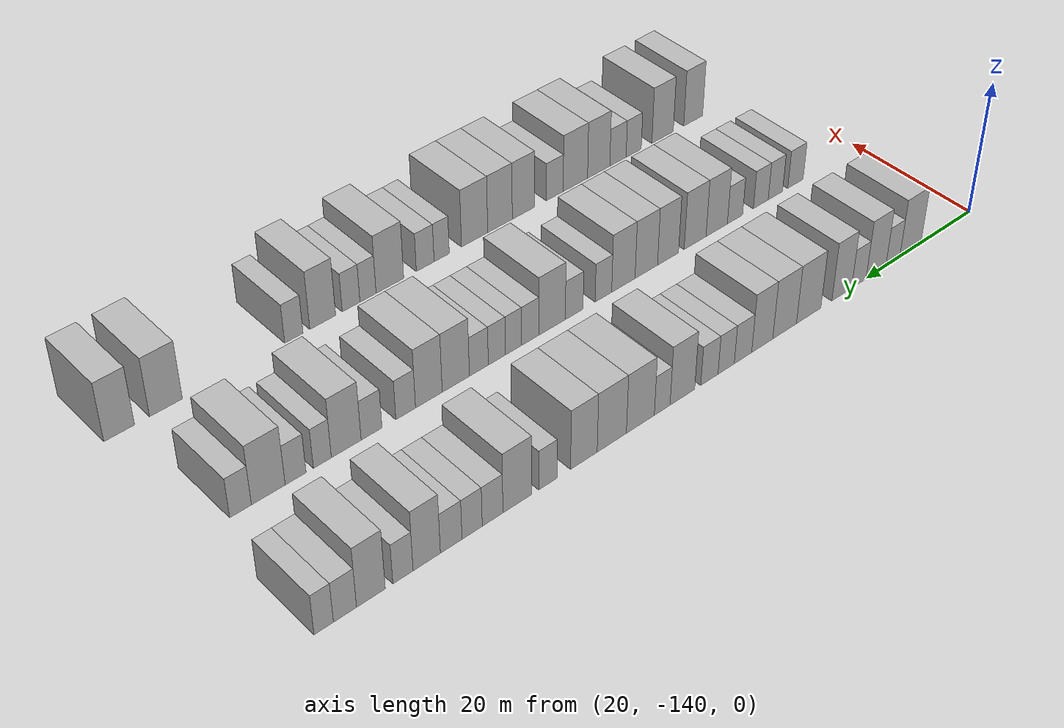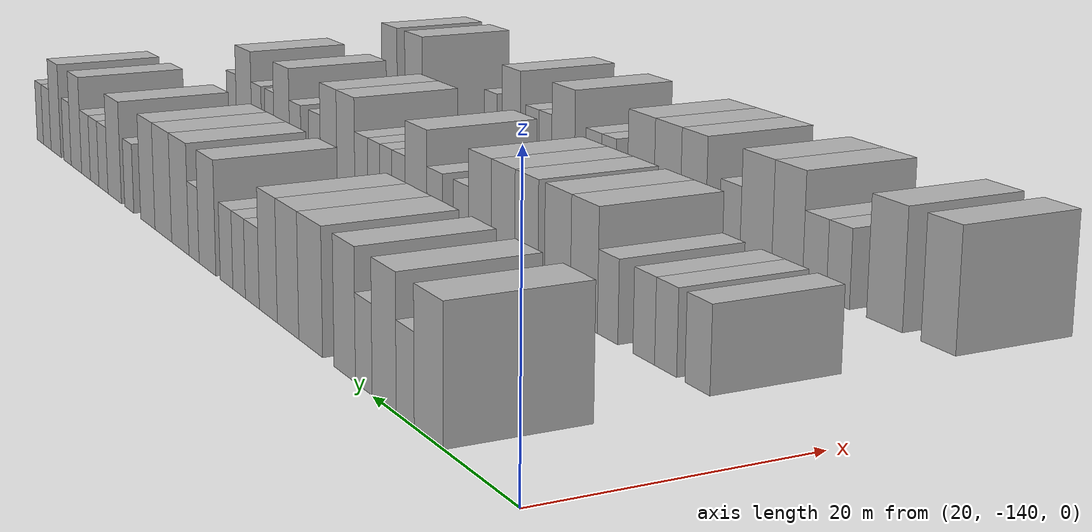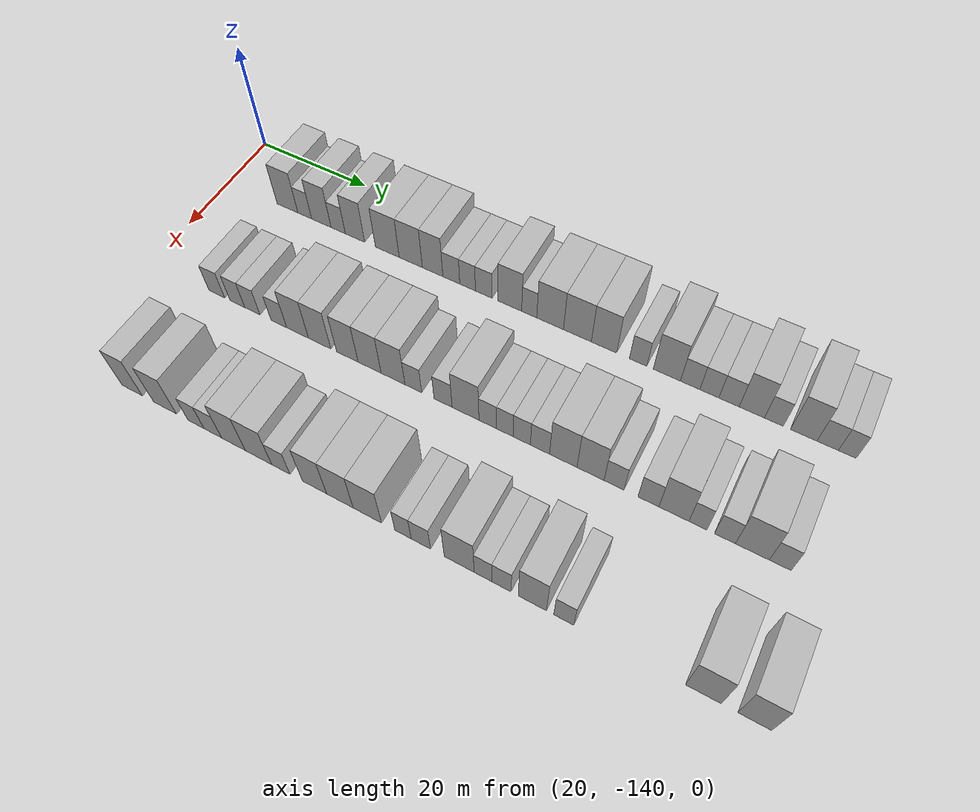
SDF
<sdf version="1.6">
 <world name="default">
  <model name="building_21">
   <static>1</static>
   <pose>25.0000 -128.2449 0 0.000000 0.000000 0.000000</pose>
   <link name="link">
    <pose>0 0 4.50 0 0 0</pose>
    <collision name="collision"><geometry><box><size>10.0000 4.0535 9.0000</size></box></geometry></collision>
    <visual name="visual">
     <cast_shadows>0</cast_shadows>
     <geometry><box><size>10.0000 4.0535 9.0000</size></box></geometry>
     <material>
      <script>
       <uri>model://HANNAS_wall/materials/scripts</uri>
       <uri>model://HANNAS_wall/materials/textures</uri>
       <name>vrc/HANNAS_wall</name>
      </script>
     </material>
    </visual>
   </link>
  </model>
  <model name="building_22">
   <static>1</static>
   <pose>25.0000 -124.8928 0 0.000000 0.000000 0.000000</pose>
   <link name="link">
    <pose>0 0 3.00 0 0 0</pose>
    <collision name="collision"><geometry><box><size>10.0000 2.6507 6.0000</size></box></geometry></collision>
    <visual name="visual">
     <cast_shadows>0</cast_shadows>
     <geometry><box><size>10.0000 2.6507 6.0000</size></box></geometry>
     <material>
      <script>
       <uri>model://HANNAS_wall/materials/scripts</uri>
       <uri>model://HANNAS_wall/materials/textures</uri>
       <name>vrc/HANNAS_wall</name>
      </script>
     </material>
    </visual>
   </link>
  </model>
  <model name="building_23">
   <static>1</static>
   <pose>25.0000 -121.7059 0 0.000000 0.000000 0.000000</pose>
   <link name="link">
    <pose>0 0 4.50 0 0 0</pose>
    <collision name="collision"><geometry><box><size>10.0000 3.7232 9.0000</size></box></geometry></collision>
    <visual name="visual">
     <cast_shadows>0</cast_shadows>
     <geometry><box><size>10.0000 3.7232 9.0000</size></box></geometry>
     <material>
      <script>
       <uri>model://HANNAS_wall/materials/scripts</uri>
       <uri>model://HANNAS_wall/materials/textures</uri>
       <name>vrc/HANNAS_wall</name>
      </script>
     </material>
    </visual>
   </link>
  </model>
  <model name="building_24">
   <static>1</static>
   <pose>25.0000 -118.4981 0 0.000000 0.000000 0.000000</pose>
   <link name="link">
    <pose>0 0 3.00 0 0 0</pose>
    <collision name="collision"><geometry><box><size>10.0000 2.6922 6.0000</size></box></geometry></collision>
    <visual name="visual">
     <cast_shadows>0</cast_shadows>
     <geometry><box><size>10.0000 2.6922 6.0000</size></box></geometry>
     <material>
      <script>
       <uri>model://HANNAS_wall/materials/scripts</uri>
       <uri>model://HANNAS_wall/materials/textures</uri>
       <name>vrc/HANNAS_wall</name>
      </script>
     </material>
    </visual>
   </link>
  </model>
  <model name="building_25">
   <static>1</static>
   <pose>25.0000 -115.3469 0 0.000000 0.000000 0.000000</pose>
   <link name="link">
    <pose>0 0 4.50 0 0 0</pose>
    <collision name="collision"><geometry><box><size>10.0000 3.6103 9.0000</size></box></geometry></collision>
    <visual name="visual">
     <cast_shadows>0</cast_shadows>
     <geometry><box><size>10.0000 3.6103 9.0000</size></box></geometry>
     <material>
      <script>
       <uri>model://HANNAS_wall/materials/scripts</uri>
       <uri>model://HANNAS_wall/materials/textures</uri>
       <name>vrc/HANNAS_wall</name>
      </script>
     </material>
    </visual>
   </link>
  </model>
  <model name="building_26">
   <static>1</static>
   <pose>25.0000 -109.3622 0 0.000000 0.000000 0.000000</pose>
   <link name="link">
    <pose>0 0 4.50 0 0 0</pose>
    <collision name="collision"><geometry><box><size>10.0000 4.3591 9.0000</size></box></geometry></collision>
    <visual name="visual">
     <cast_shadows>0</cast_shadows>
     <geometry><box><size>10.0000 4.3591 9.0000</size></box></geometry>
     <material>
      <script>
       <uri>model://HANNAS_wall/materials/scripts</uri>
       <uri>model://HANNAS_wall/materials/textures</uri>
       <name>vrc/HANNAS_wall</name>
      </script>
     </material>
    </visual>
   </link>
  </model>
  <model name="building_27">
   <static>1</static>
   <pose>25.0000 -105.1069 0 0.000000 0.000000 0.000000</pose>
   <link name="link">
    <pose>0 0 4.50 0 0 0</pose>
    <collision name="collision"><geometry><box><size>10.0000 4.1515 9.0000</size></box></geometry></collision>
    <visual name="visual">
     <cast_shadows>0</cast_shadows>
     <geometry><box><size>10.0000 4.1515 9.0000</size></box></geometry>
     <material>
      <script>
       <uri>model://HANNAS_wall/materials/scripts</uri>
       <uri>model://HANNAS_wall/materials/textures</uri>
       <name>vrc/HANNAS_wall</name>
      </script>
     </material>
    </visual>
   </link>
  </model>
  <model name="building_28">
   <static>1</static>
   <pose>25.0000 -101.2152 0 0.000000 0.000000 0.000000</pose>
   <link name="link">
    <pose>0 0 4.50 0 0 0</pose>
    <collision name="collision"><geometry><box><size>10.0000 3.6319 9.0000</size></box></geometry></collision>
    <visual name="visual">
     <cast_shadows>0</cast_shadows>
     <geometry><box><size>10.0000 3.6319 9.0000</size></box></geometry>
     <material>
      <script>
       <uri>model://HANNAS_wall/materials/scripts</uri>
       <uri>model://HANNAS_wall/materials/textures</uri>
       <name>vrc/HANNAS_wall</name>
      </script>
     </material>
    </visual>
   </link>
  </model>
  <model name="building_29">
   <static>1</static>
   <pose>25.0000 -97.9208 0 0.000000 0.000000 0.000000</pose>
   <link name="link">
    <pose>0 0 3.00 0 0 0</pose>
    <collision name="collision"><geometry><box><size>10.0000 2.9568 6.0000</size></box></geometry></collision>
    <visual name="visual">
     <cast_shadows>0</cast_shadows>
     <geometry><box><size>10.0000 2.9568 6.0000</size></box></geometry>
     <material>
      <script>
       <uri>model://HANNAS_wall/materials/scripts</uri>
       <uri>model://HANNAS_wall/materials/textures</uri>
       <name>vrc/HANNAS_wall</name>
      </script>
     </material>
    </visual>
   </link>
  </model>
  <model name="building_30">
   <static>1</static>
   <pose>25.0000 -95.0823 0 0.000000 0.000000 0.000000</pose>
   <link name="link">
    <pose>0 0 3.00 0 0 0</pose>
    <collision name="collision"><geometry><box><size>10.0000 2.7202 6.0000</size></box></geometry></collision>
    <visual name="visual">
     <cast_shadows>0</cast_shadows>
     <geometry><box><size>10.0000 2.7202 6.0000</size></box></geometry>
     <material>
      <script>
       <uri>model://HANNAS_wall/materials/scripts</uri>
       <uri>model://HANNAS_wall/materials/textures</uri>
       <name>vrc/HANNAS_wall</name>
      </script>
     </material>
    </visual>
   </link>
  </model>
  <model name="building_31">
   <static>1</static>
   <pose>25.0000 -92.2942 0 0.000000 0.000000 0.000000</pose>
   <link name="link">
    <pose>0 0 3.00 0 0 0</pose>
    <collision name="collision"><geometry><box><size>10.0000 2.8559 6.0000</size></box></geometry></collision>
    <visual name="visual">
     <cast_shadows>0</cast_shadows>
     <geometry><box><size>10.0000 2.8559 6.0000</size></box></geometry>
     <material>
      <script>
       <uri>model://HANNAS_wall/materials/scripts</uri>
       <uri>model://HANNAS_wall/materials/textures</uri>
       <name>vrc/HANNAS_wall</name>
      </script>
     </material>
    </visual>
   </link>
  </model>
  <model name="building_32">
   <static>1</static>
   <pose>25.0000 -87.8706 0 0.000000 0.000000 0.000000</pose>
   <link name="link">
    <pose>0 0 4.50 0 0 0</pose>
    <collision name="collision"><geometry><box><size>10.0000 3.9913 9.0000</size></box></geometry></collision>
    <visual name="visual">
     <cast_shadows>0</cast_shadows>
     <geometry><box><size>10.0000 3.9913 9.0000</size></box></geometry>
     <material>
      <script>
       <uri>model://HANNAS_wall/materials/scripts</uri>
       <uri>model://HANNAS_wall/materials/textures</uri>
       <name>vrc/HANNAS_wall</name>
      </script>
     </material>
    </visual>
   </link>
  </model>
  <model name="building_33">
   <static>1</static>
   <pose>25.0000 -84.6173 0 0.000000 0.000000 0.000000</pose>
   <link name="link">
    <pose>0 0 3.00 0 0 0</pose>
    <collision name="collision"><geometry><box><size>10.0000 2.5153 6.0000</size></box></geometry></collision>
    <visual name="visual">
     <cast_shadows>0</cast_shadows>
     <geometry><box><size>10.0000 2.5153 6.0000</size></box></geometry>
     <material>
      <script>
       <uri>model://HANNAS_wall/materials/scripts</uri>
       <uri>model://HANNAS_wall/materials/textures</uri>
       <name>vrc/HANNAS_wall</name>
      </script>
     </material>
    </visual>
   </link>
  </model>
  <model name="building_34">
   <static>1</static>
   <pose>25.0000 -81.1599 0 0.000000 0.000000 0.000000</pose>
   <link name="link">
    <pose>0 0 4.50 0 0 0</pose>
    <collision name="collision"><geometry><box><size>10.0000 4.3994 9.0000</size></box></geometry></collision>
    <visual name="visual">
     <cast_shadows>0</cast_shadows>
     <geometry><box><size>10.0000 4.3994 9.0000</size></box></geometry>
     <material>
      <script>
       <uri>model://HANNAS_wall/materials/scripts</uri>
       <uri>model://HANNAS_wall/materials/textures</uri>
       <name>vrc/HANNAS_wall</name>
      </script>
     </material>
    </visual>
   </link>
  </model>
  <model name="building_35">
   <static>1</static>
   <pose>25.0000 -76.7118 0 0.000000 0.000000 0.000000</pose>
   <link name="link">
    <pose>0 0 4.50 0 0 0</pose>
    <collision name="collision"><geometry><box><size>10.0000 4.4968 9.0000</size></box></geometry></collision>
    <visual name="visual">
     <cast_shadows>0</cast_shadows>
     <geometry><box><size>10.0000 4.4968 9.0000</size></box></geometry>
     <material>
      <script>
       <uri>model://HANNAS_wall/materials/scripts</uri>
       <uri>model://HANNAS_wall/materials/textures</uri>
       <name>vrc/HANNAS_wall</name>
      </script>
     </material>
    </visual>
   </link>
  </model>
  <model name="building_36">
   <static>1</static>
   <pose>25.0000 -72.4537 0 0.000000 0.000000 0.000000</pose>
   <link name="link">
    <pose>0 0 4.50 0 0 0</pose>
    <collision name="collision"><geometry><box><size>10.0000 4.0195 9.0000</size></box></geometry></collision>
    <visual name="visual">
     <cast_shadows>0</cast_shadows>
     <geometry><box><size>10.0000 4.0195 9.0000</size></box></geometry>
     <material>
      <script>
       <uri>model://HANNAS_wall/materials/scripts</uri>
       <uri>model://HANNAS_wall/materials/textures</uri>
       <name>vrc/HANNAS_wall</name>
      </script>
     </material>
    </visual>
   </link>
  </model>
  <model name="building_37">
   <static>1</static>
   <pose>25.0000 -67.0926 0 0.000000 0.000000 0.000000</pose>
   <link name="link">
    <pose>0 0 3.00 0 0 0</pose>
    <collision name="collision"><geometry><box><size>10.0000 2.7026 6.0000</size></box></geometry></collision>
    <visual name="visual">
     <cast_shadows>0</cast_shadows>
     <geometry><box><size>10.0000 2.7026 6.0000</size></box></geometry>
     <material>
      <script>
       <uri>model://HANNAS_wall/materials/scripts</uri>
       <uri>model://HANNAS_wall/materials/textures</uri>
       <name>vrc/HANNAS_wall</name>
      </script>
     </material>
    </visual>
   </link>
  </model>
  <model name="building_38">
   <static>1</static>
   <pose>25.0000 -62.6629 0 0.000000 0.000000 0.000000</pose>
   <link name="link">
    <pose>0 0 4.50 0 0 0</pose>
    <collision name="collision"><geometry><box><size>10.0000 4.1569 9.0000</size></box></geometry></collision>
    <visual name="visual">
     <cast_shadows>0</cast_shadows>
     <geometry><box><size>10.0000 4.1569 9.0000</size></box></geometry>
     <material>
      <script>
       <uri>model://HANNAS_wall/materials/scripts</uri>
       <uri>model://HANNAS_wall/materials/textures</uri>
       <name>vrc/HANNAS_wall</name>
      </script>
     </material>
    </visual>
   </link>
  </model>
  <model name="building_39">
   <static>1</static>
   <pose>25.0000 -59.1202 0 0.000000 0.000000 0.000000</pose>
   <link name="link">
    <pose>0 0 3.00 0 0 0</pose>
    <collision name="collision"><geometry><box><size>10.0000 2.9286 6.0000</size></box></geometry></collision>
    <visual name="visual">
     <cast_shadows>0</cast_shadows>
     <geometry><box><size>10.0000 2.9286 6.0000</size></box></geometry>
     <material>
      <script>
       <uri>model://HANNAS_wall/materials/scripts</uri>
       <uri>model://HANNAS_wall/materials/textures</uri>
       <name>vrc/HANNAS_wall</name>
      </script>
     </material>
    </visual>
   </link>
  </model>
  <model name="building_40">
   <static>1</static>
   <pose>25.0000 -56.2437 0 0.000000 0.000000 0.000000</pose>
   <link name="link">
    <pose>0 0 3.00 0 0 0</pose>
    <collision name="collision"><geometry><box><size>10.0000 2.8243 6.0000</size></box></geometry></collision>
    <visual name="visual">
     <cast_shadows>0</cast_shadows>
     <geometry><box><size>10.0000 2.8243 6.0000</size></box></geometry>
     <material>
      <script>
       <uri>model://HANNAS_wall/materials/scripts</uri>
       <uri>model://HANNAS_wall/materials/textures</uri>
       <name>vrc/HANNAS_wall</name>
      </script>
     </material>
    </visual>
   </link>
  </model>
  <model name="building_41">
   <static>1</static>
   <pose>25.0000 -53.3429 0 0.000000 0.000000 0.000000</pose>
   <link name="link">
    <pose>0 0 3.00 0 0 0</pose>
    <collision name="collision"><geometry><box><size>10.0000 2.9773 6.0000</size></box></geometry></collision>
    <visual name="visual">
     <cast_shadows>0</cast_shadows>
     <geometry><box><size>10.0000 2.9773 6.0000</size></box></geometry>
     <material>
      <script>
       <uri>model://HANNAS_wall/materials/scripts</uri>
       <uri>model://HANNAS_wall/materials/textures</uri>
       <name>vrc/HANNAS_wall</name>
      </script>
     </material>
    </visual>
   </link>
  </model>
  <model name="building_42">
   <static>1</static>
   <pose>25.0000 -50.0095 0 0.000000 0.000000 0.000000</pose>
   <link name="link">
    <pose>0 0 4.50 0 0 0</pose>
    <collision name="collision"><geometry><box><size>10.0000 3.6895 9.0000</size></box></geometry></collision>
    <visual name="visual">
     <cast_shadows>0</cast_shadows>
     <geometry><box><size>10.0000 3.6895 9.0000</size></box></geometry>
     <material>
      <script>
       <uri>model://HANNAS_wall/materials/scripts</uri>
       <uri>model://HANNAS_wall/materials/textures</uri>
       <name>vrc/HANNAS_wall</name>
      </script>
     </material>
    </visual>
   </link>
  </model>
  <model name="building_43">
   <static>1</static>
   <pose>25.0000 -46.8148 0 0.000000 0.000000 0.000000</pose>
   <link name="link">
    <pose>0 0 3.00 0 0 0</pose>
    <collision name="collision"><geometry><box><size>10.0000 2.6999 6.0000</size></box></geometry></collision>
    <visual name="visual">
     <cast_shadows>0</cast_shadows>
     <geometry><box><size>10.0000 2.6999 6.0000</size></box></geometry>
     <material>
      <script>
       <uri>model://HANNAS_wall/materials/scripts</uri>
       <uri>model://HANNAS_wall/materials/textures</uri>
       <name>vrc/HANNAS_wall</name>
      </script>
     </material>
    </visual>
   </link>
  </model>
  <model name="building_44">
   <static>1</static>
   <pose>25.0000 -42.5938 0 0.000000 0.000000 0.000000</pose>
   <link name="link">
    <pose>0 0 4.50 0 0 0</pose>
    <collision name="collision"><geometry><box><size>10.0000 3.7421 9.0000</size></box></geometry></collision>
    <visual name="visual">
     <cast_shadows>0</cast_shadows>
     <geometry><box><size>10.0000 3.7421 9.0000</size></box></geometry>
     <material>
      <script>
       <uri>model://HANNAS_wall/materials/scripts</uri>
       <uri>model://HANNAS_wall/materials/textures</uri>
       <name>vrc/HANNAS_wall</name>
      </script>
     </material>
    </visual>
   </link>
  </model>
  <model name="building_45">
   <static>1</static>
   <pose>25.0000 -39.2395 0 0.000000 0.000000 0.000000</pose>
   <link name="link">
    <pose>0 0 3.00 0 0 0</pose>
    <collision name="collision"><geometry><box><size>10.0000 2.9665 6.0000</size></box></geometry></collision>
    <visual name="visual">
     <cast_shadows>0</cast_shadows>
     <geometry><box><size>10.0000 2.9665 6.0000</size></box></geometry>
     <material>
      <script>
       <uri>model://HANNAS_wall/materials/scripts</uri>
       <uri>model://HANNAS_wall/materials/textures</uri>
       <name>vrc/HANNAS_wall</name>
      </script>
     </material>
    </visual>
   </link>
  </model>
  <model name="building_46">
   <static>1</static>
   <pose>25.0000 -36.5305 0 0.000000 0.000000 0.000000</pose>
   <link name="link">
    <pose>0 0 3.00 0 0 0</pose>
    <collision name="collision"><geometry><box><size>10.0000 2.4515 6.0000</size></box></geometry></collision>
    <visual name="visual">
     <cast_shadows>0</cast_shadows>
     <geometry><box><size>10.0000 2.4515 6.0000</size></box></geometry>
     <material>
      <script>
       <uri>model://HANNAS_wall/materials/scripts</uri>
       <uri>model://HANNAS_wall/materials/textures</uri>
       <name>vrc/HANNAS_wall</name>
      </script>
     </material>
    </visual>
   </link>
  </model>
  <model name="building_148">
   <static>1</static>
   <pose>44.0000 -127.6024 0 0.000000 0.000000 0.000000</pose>
   <link name="link">
    <pose>0 0 3.00 0 0 0</pose>
    <collision name="collision"><geometry><box><size>10.0000 2.9538 6.0000</size></box></geometry></collision>
    <visual name="visual">
     <cast_shadows>0</cast_shadows>
     <geometry><box><size>10.0000 2.9538 6.0000</size></box></geometry>
     <material>
      <script>
       <uri>model://HANNAS_wall/materials/scripts</uri>
       <uri>model://HANNAS_wall/materials/textures</uri>
       <name>vrc/HANNAS_wall</name>
      </script>
     </material>
    </visual>
   </link>
  </model>
  <model name="building_149">
   <static>1</static>
   <pose>44.0000 -123.7589 0 0.000000 0.000000 0.000000</pose>
   <link name="link">
    <pose>0 0 3.00 0 0 0</pose>
    <collision name="collision"><geometry><box><size>10.0000 2.7332 6.0000</size></box></geometry></collision>
    <visual name="visual">
     <cast_shadows>0</cast_shadows>
     <geometry><box><size>10.0000 2.7332 6.0000</size></box></geometry>
     <material>
      <script>
       <uri>model://HANNAS_wall/materials/scripts</uri>
       <uri>model://HANNAS_wall/materials/textures</uri>
       <name>vrc/HANNAS_wall</name>
      </script>
     </material>
    </visual>
   </link>
  </model>
  <model name="building_150">
   <static>1</static>
   <pose>44.0000 -120.9996 0 0.000000 0.000000 0.000000</pose>
   <link name="link">
    <pose>0 0 3.00 0 0 0</pose>
    <collision name="collision"><geometry><box><size>10.0000 2.7855 6.0000</size></box></geometry></collision>
    <visual name="visual">
     <cast_shadows>0</cast_shadows>
     <geometry><box><size>10.0000 2.7855 6.0000</size></box></geometry>
     <material>
      <script>
       <uri>model://HANNAS_wall/materials/scripts</uri>
       <uri>model://HANNAS_wall/materials/textures</uri>
       <name>vrc/HANNAS_wall</name>
      </script>
     </material>
    </visual>
   </link>
  </model>
  <model name="building_151">
   <static>1</static>
   <pose>44.0000 -116.2010 0 0.000000 0.000000 0.000000</pose>
   <link name="link">
    <pose>0 0 3.00 0 0 0</pose>
    <collision name="collision"><geometry><box><size>10.0000 2.8116 6.0000</size></box></geometry></collision>
    <visual name="visual">
     <cast_shadows>0</cast_shadows>
     <geometry><box><size>10.0000 2.8116 6.0000</size></box></geometry>
     <material>
      <script>
       <uri>model://HANNAS_wall/materials/scripts</uri>
       <uri>model://HANNAS_wall/materials/textures</uri>
       <name>vrc/HANNAS_wall</name>
      </script>
     </material>
    </visual>
   </link>
  </model>
  <model name="building_152">
   <static>1</static>
   <pose>44.0000 -112.8559 0 0.000000 0.000000 0.000000</pose>
   <link name="link">
    <pose>0 0 4.50 0 0 0</pose>
    <collision name="collision"><geometry><box><size>10.0000 3.8787 9.0000</size></box></geometry></collision>
    <visual name="visual">
     <cast_shadows>0</cast_shadows>
     <geometry><box><size>10.0000 3.8787 9.0000</size></box></geometry>
     <material>
      <script>
       <uri>model://HANNAS_wall/materials/scripts</uri>
       <uri>model://HANNAS_wall/materials/textures</uri>
       <name>vrc/HANNAS_wall</name>
      </script>
     </material>
    </visual>
   </link>
  </model>
  <model name="building_153">
   <static>1</static>
   <pose>44.0000 -108.9630 0 0.000000 0.000000 0.000000</pose>
   <link name="link">
    <pose>0 0 4.50 0 0 0</pose>
    <collision name="collision"><geometry><box><size>10.0000 3.9071 9.0000</size></box></geometry></collision>
    <visual name="visual">
     <cast_shadows>0</cast_shadows>
     <geometry><box><size>10.0000 3.9071 9.0000</size></box></geometry>
     <material>
      <script>
       <uri>model://HANNAS_wall/materials/scripts</uri>
       <uri>model://HANNAS_wall/materials/textures</uri>
       <name>vrc/HANNAS_wall</name>
      </script>
     </material>
    </visual>
   </link>
  </model>
  <model name="building_154">
   <static>1</static>
   <pose>44.0000 -104.1670 0 0.000000 0.000000 0.000000</pose>
   <link name="link">
    <pose>0 0 4.50 0 0 0</pose>
    <collision name="collision"><geometry><box><size>10.0000 3.6849 9.0000</size></box></geometry></collision>
    <visual name="visual">
     <cast_shadows>0</cast_shadows>
     <geometry><box><size>10.0000 3.6849 9.0000</size></box></geometry>
     <material>
      <script>
       <uri>model://HANNAS_wall/materials/scripts</uri>
       <uri>model://HANNAS_wall/materials/textures</uri>
       <name>vrc/HANNAS_wall</name>
      </script>
     </material>
    </visual>
   </link>
  </model>
  <model name="building_155">
   <static>1</static>
   <pose>44.0000 -100.3851 0 0.000000 0.000000 0.000000</pose>
   <link name="link">
    <pose>0 0 4.50 0 0 0</pose>
    <collision name="collision"><geometry><box><size>10.0000 3.8789 9.0000</size></box></geometry></collision>
    <visual name="visual">
     <cast_shadows>0</cast_shadows>
     <geometry><box><size>10.0000 3.8789 9.0000</size></box></geometry>
     <material>
      <script>
       <uri>model://HANNAS_wall/materials/scripts</uri>
       <uri>model://HANNAS_wall/materials/textures</uri>
       <name>vrc/HANNAS_wall</name>
      </script>
     </material>
    </visual>
   </link>
  </model>
  <model name="building_156">
   <static>1</static>
   <pose>44.0000 -96.4653 0 0.000000 0.000000 0.000000</pose>
   <link name="link">
    <pose>0 0 4.50 0 0 0</pose>
    <collision name="collision"><geometry><box><size>10.0000 3.9608 9.0000</size></box></geometry></collision>
    <visual name="visual">
     <cast_shadows>0</cast_shadows>
     <geometry><box><size>10.0000 3.9608 9.0000</size></box></geometry>
     <material>
      <script>
       <uri>model://HANNAS_wall/materials/scripts</uri>
       <uri>model://HANNAS_wall/materials/textures</uri>
       <name>vrc/HANNAS_wall</name>
      </script>
     </material>
    </visual>
   </link>
  </model>
  <model name="building_157">
   <static>1</static>
   <pose>44.0000 -93.1043 0 0.000000 0.000000 0.000000</pose>
   <link name="link">
    <pose>0 0 3.00 0 0 0</pose>
    <collision name="collision"><geometry><box><size>10.0000 2.7611 6.0000</size></box></geometry></collision>
    <visual name="visual">
     <cast_shadows>0</cast_shadows>
     <geometry><box><size>10.0000 2.7611 6.0000</size></box></geometry>
     <material>
      <script>
       <uri>model://HANNAS_wall/materials/scripts</uri>
       <uri>model://HANNAS_wall/materials/textures</uri>
       <name>vrc/HANNAS_wall</name>
      </script>
     </material>
    </visual>
   </link>
  </model>
  <model name="building_158">
   <static>1</static>
   <pose>44.0000 -88.2735 0 0.000000 0.000000 0.000000</pose>
   <link name="link">
    <pose>0 0 3.00 0 0 0</pose>
    <collision name="collision"><geometry><box><size>10.0000 2.9005 6.0000</size></box></geometry></collision>
    <visual name="visual">
     <cast_shadows>0</cast_shadows>
     <geometry><box><size>10.0000 2.9005 6.0000</size></box></geometry>
     <material>
      <script>
       <uri>model://HANNAS_wall/materials/scripts</uri>
       <uri>model://HANNAS_wall/materials/textures</uri>
       <name>vrc/HANNAS_wall</name>
      </script>
     </material>
    </visual>
   </link>
  </model>
  <model name="building_159">
   <static>1</static>
   <pose>44.0000 -84.6872 0 0.000000 0.000000 0.000000</pose>
   <link name="link">
    <pose>0 0 4.50 0 0 0</pose>
    <collision name="collision"><geometry><box><size>10.0000 4.2721 9.0000</size></box></geometry></collision>
    <visual name="visual">
     <cast_shadows>0</cast_shadows>
     <geometry><box><size>10.0000 4.2721 9.0000</size></box></geometry>
     <material>
      <script>
       <uri>model://HANNAS_wall/materials/scripts</uri>
       <uri>model://HANNAS_wall/materials/textures</uri>
       <name>vrc/HANNAS_wall</name>
      </script>
     </material>
    </visual>
   </link>
  </model>
  <model name="building_160">
   <static>1</static>
   <pose>44.0000 -81.1889 0 0.000000 0.000000 0.000000</pose>
   <link name="link">
    <pose>0 0 3.00 0 0 0</pose>
    <collision name="collision"><geometry><box><size>10.0000 2.7246 6.0000</size></box></geometry></collision>
    <visual name="visual">
     <cast_shadows>0</cast_shadows>
     <geometry><box><size>10.0000 2.7246 6.0000</size></box></geometry>
     <material>
      <script>
       <uri>model://HANNAS_wall/materials/scripts</uri>
       <uri>model://HANNAS_wall/materials/textures</uri>
       <name>vrc/HANNAS_wall</name>
      </script>
     </material>
    </visual>
   </link>
  </model>
  <model name="building_161">
   <static>1</static>
   <pose>44.0000 -78.5499 0 0.000000 0.000000 0.000000</pose>
   <link name="link">
    <pose>0 0 3.00 0 0 0</pose>
    <collision name="collision"><geometry><box><size>10.0000 2.5533 6.0000</size></box></geometry></collision>
    <visual name="visual">
     <cast_shadows>0</cast_shadows>
     <geometry><box><size>10.0000 2.5533 6.0000</size></box></geometry>
     <material>
      <script>
       <uri>model://HANNAS_wall/materials/scripts</uri>
       <uri>model://HANNAS_wall/materials/textures</uri>
       <name>vrc/HANNAS_wall</name>
      </script>
     </material>
    </visual>
   </link>
  </model>
  <model name="building_162">
   <static>1</static>
   <pose>44.0000 -75.9496 0 0.000000 0.000000 0.000000</pose>
   <link name="link">
    <pose>0 0 3.00 0 0 0</pose>
    <collision name="collision"><geometry><box><size>10.0000 2.6474 6.0000</size></box></geometry></collision>
    <visual name="visual">
     <cast_shadows>0</cast_shadows>
     <geometry><box><size>10.0000 2.6474 6.0000</size></box></geometry>
     <material>
      <script>
       <uri>model://HANNAS_wall/materials/scripts</uri>
       <uri>model://HANNAS_wall/materials/textures</uri>
       <name>vrc/HANNAS_wall</name>
      </script>
     </material>
    </visual>
   </link>
  </model>
  <model name="building_163">
   <static>1</static>
   <pose>44.0000 -73.1820 0 0.000000 0.000000 0.000000</pose>
   <link name="link">
    <pose>0 0 3.00 0 0 0</pose>
    <collision name="collision"><geometry><box><size>10.0000 2.8878 6.0000</size></box></geometry></collision>
    <visual name="visual">
     <cast_shadows>0</cast_shadows>
     <geometry><box><size>10.0000 2.8878 6.0000</size></box></geometry>
     <material>
      <script>
       <uri>model://HANNAS_wall/materials/scripts</uri>
       <uri>model://HANNAS_wall/materials/textures</uri>
       <name>vrc/HANNAS_wall</name>
      </script>
     </material>
    </visual>
   </link>
  </model>
  <model name="building_164">
   <static>1</static>
   <pose>44.0000 -69.6865 0 0.000000 0.000000 0.000000</pose>
   <link name="link">
    <pose>0 0 4.50 0 0 0</pose>
    <collision name="collision"><geometry><box><size>10.0000 4.1031 9.0000</size></box></geometry></collision>
    <visual name="visual">
     <cast_shadows>0</cast_shadows>
     <geometry><box><size>10.0000 4.1031 9.0000</size></box></geometry>
     <material>
      <script>
       <uri>model://HANNAS_wall/materials/scripts</uri>
       <uri>model://HANNAS_wall/materials/textures</uri>
       <name>vrc/HANNAS_wall</name>
      </script>
     </material>
    </visual>
   </link>
  </model>
  <model name="building_165">
   <static>1</static>
   <pose>44.0000 -65.6578 0 0.000000 0.000000 0.000000</pose>
   <link name="link">
    <pose>0 0 4.50 0 0 0</pose>
    <collision name="collision"><geometry><box><size>10.0000 3.9543 9.0000</size></box></geometry></collision>
    <visual name="visual">
     <cast_shadows>0</cast_shadows>
     <geometry><box><size>10.0000 3.9543 9.0000</size></box></geometry>
     <material>
      <script>
       <uri>model://HANNAS_wall/materials/scripts</uri>
       <uri>model://HANNAS_wall/materials/textures</uri>
       <name>vrc/HANNAS_wall</name>
      </script>
     </material>
    </visual>
   </link>
  </model>
  <model name="building_166">
   <static>1</static>
   <pose>44.0000 -62.2463 0 0.000000 0.000000 0.000000</pose>
   <link name="link">
    <pose>0 0 3.00 0 0 0</pose>
    <collision name="collision"><geometry><box><size>10.0000 2.8687 6.0000</size></box></geometry></collision>
    <visual name="visual">
     <cast_shadows>0</cast_shadows>
     <geometry><box><size>10.0000 2.8687 6.0000</size></box></geometry>
     <material>
      <script>
       <uri>model://HANNAS_wall/materials/scripts</uri>
       <uri>model://HANNAS_wall/materials/textures</uri>
       <name>vrc/HANNAS_wall</name>
      </script>
     </material>
    </visual>
   </link>
  </model>
  <model name="building_167">
   <static>1</static>
   <pose>44.0000 -57.3303 0 0.000000 0.000000 0.000000</pose>
   <link name="link">
    <pose>0 0 3.00 0 0 0</pose>
    <collision name="collision"><geometry><box><size>10.0000 2.9634 6.0000</size></box></geometry></collision>
    <visual name="visual">
     <cast_shadows>0</cast_shadows>
     <geometry><box><size>10.0000 2.9634 6.0000</size></box></geometry>
     <material>
      <script>
       <uri>model://HANNAS_wall/materials/scripts</uri>
       <uri>model://HANNAS_wall/materials/textures</uri>
       <name>vrc/HANNAS_wall</name>
      </script>
     </material>
    </visual>
   </link>
  </model>
  <model name="building_168">
   <static>1</static>
   <pose>44.0000 -53.7617 0 0.000000 0.000000 0.000000</pose>
   <link name="link">
    <pose>0 0 4.50 0 0 0</pose>
    <collision name="collision"><geometry><box><size>10.0000 4.1738 9.0000</size></box></geometry></collision>
    <visual name="visual">
     <cast_shadows>0</cast_shadows>
     <geometry><box><size>10.0000 4.1738 9.0000</size></box></geometry>
     <material>
      <script>
       <uri>model://HANNAS_wall/materials/scripts</uri>
       <uri>model://HANNAS_wall/materials/textures</uri>
       <name>vrc/HANNAS_wall</name>
      </script>
     </material>
    </visual>
   </link>
  </model>
  <model name="building_169">
   <static>1</static>
   <pose>44.0000 -50.4383 0 0.000000 0.000000 0.000000</pose>
   <link name="link">
    <pose>0 0 3.00 0 0 0</pose>
    <collision name="collision"><geometry><box><size>10.0000 2.4729 6.0000</size></box></geometry></collision>
    <visual name="visual">
     <cast_shadows>0</cast_shadows>
     <geometry><box><size>10.0000 2.4729 6.0000</size></box></geometry>
     <material>
      <script>
       <uri>model://HANNAS_wall/materials/scripts</uri>
       <uri>model://HANNAS_wall/materials/textures</uri>
       <name>vrc/HANNAS_wall</name>
      </script>
     </material>
    </visual>
   </link>
  </model>
  <model name="building_170">
   <static>1</static>
   <pose>44.0000 -46.7871 0 0.000000 0.000000 0.000000</pose>
   <link name="link">
    <pose>0 0 3.00 0 0 0</pose>
    <collision name="collision"><geometry><box><size>10.0000 2.8296 6.0000</size></box></geometry></collision>
    <visual name="visual">
     <cast_shadows>0</cast_shadows>
     <geometry><box><size>10.0000 2.8296 6.0000</size></box></geometry>
     <material>
      <script>
       <uri>model://HANNAS_wall/materials/scripts</uri>
       <uri>model://HANNAS_wall/materials/textures</uri>
       <name>vrc/HANNAS_wall</name>
      </script>
     </material>
    </visual>
   </link>
  </model>
  <model name="building_171">
   <static>1</static>
   <pose>44.0000 -43.1258 0 0.000000 0.000000 0.000000</pose>
   <link name="link">
    <pose>0 0 4.50 0 0 0</pose>
    <collision name="collision"><geometry><box><size>10.0000 4.4929 9.0000</size></box></geometry></collision>
    <visual name="visual">
     <cast_shadows>0</cast_shadows>
     <geometry><box><size>10.0000 4.4929 9.0000</size></box></geometry>
     <material>
      <script>
       <uri>model://HANNAS_wall/materials/scripts</uri>
       <uri>model://HANNAS_wall/materials/textures</uri>
       <name>vrc/HANNAS_wall</name>
      </script>
     </material>
    </visual>
   </link>
  </model>
  <model name="building_172">
   <static>1</static>
   <pose>44.0000 -39.4519 0 0.000000 0.000000 0.000000</pose>
   <link name="link">
    <pose>0 0 3.00 0 0 0</pose>
    <collision name="collision"><geometry><box><size>10.0000 2.8550 6.0000</size></box></geometry></collision>
    <visual name="visual">
     <cast_shadows>0</cast_shadows>
     <geometry><box><size>10.0000 2.8550 6.0000</size></box></geometry>
     <material>
      <script>
       <uri>model://HANNAS_wall/materials/scripts</uri>
       <uri>model://HANNAS_wall/materials/textures</uri>
       <name>vrc/HANNAS_wall</name>
      </script>
     </material>
    </visual>
   </link>
  </model>
  <model name="building_264">
   <static>1</static>
   <pose>63.0000 -127.6039 0 0.000000 0.000000 0.000000</pose>
   <link name="link">
    <pose>0 0 4.50 0 0 0</pose>
    <collision name="collision"><geometry><box><size>10.0000 3.6449 9.0000</size></box></geometry></collision>
    <visual name="visual">
     <cast_shadows>0</cast_shadows>
     <geometry><box><size>10.0000 3.6449 9.0000</size></box></geometry>
     <material>
      <script>
       <uri>model://HANNAS_wall/materials/scripts</uri>
       <uri>model://HANNAS_wall/materials/textures</uri>
       <name>vrc/HANNAS_wall</name>
      </script>
     </material>
    </visual>
   </link>
  </model>
  <model name="building_265">
   <static>1</static>
   <pose>63.0000 -121.7543 0 0.000000 0.000000 0.000000</pose>
   <link name="link">
    <pose>0 0 4.50 0 0 0</pose>
    <collision name="collision"><geometry><box><size>10.0000 4.0544 9.0000</size></box></geometry></collision>
    <visual name="visual">
     <cast_shadows>0</cast_shadows>
     <geometry><box><size>10.0000 4.0544 9.0000</size></box></geometry>
     <material>
      <script>
       <uri>model://HANNAS_wall/materials/scripts</uri>
       <uri>model://HANNAS_wall/materials/textures</uri>
       <name>vrc/HANNAS_wall</name>
      </script>
     </material>
    </visual>
   </link>
  </model>
  <model name="building_266">
   <static>1</static>
   <pose>63.0000 -116.3293 0 0.000000 0.000000 0.000000</pose>
   <link name="link">
    <pose>0 0 3.00 0 0 0</pose>
    <collision name="collision"><geometry><box><size>10.0000 2.7956 6.0000</size></box></geometry></collision>
    <visual name="visual">
     <cast_shadows>0</cast_shadows>
     <geometry><box><size>10.0000 2.7956 6.0000</size></box></geometry>
     <material>
      <script>
       <uri>model://HANNAS_wall/materials/scripts</uri>
       <uri>model://HANNAS_wall/materials/textures</uri>
       <name>vrc/HANNAS_wall</name>
      </script>
     </material>
    </visual>
   </link>
  </model>
  <model name="building_267">
   <static>1</static>
   <pose>63.0000 -113.4358 0 0.000000 0.000000 0.000000</pose>
   <link name="link">
    <pose>0 0 3.00 0 0 0</pose>
    <collision name="collision"><geometry><box><size>10.0000 2.9914 6.0000</size></box></geometry></collision>
    <visual name="visual">
     <cast_shadows>0</cast_shadows>
     <geometry><box><size>10.0000 2.9914 6.0000</size></box></geometry>
     <material>
      <script>
       <uri>model://HANNAS_wall/materials/scripts</uri>
       <uri>model://HANNAS_wall/materials/textures</uri>
       <name>vrc/HANNAS_wall</name>
      </script>
     </material>
    </visual>
   </link>
  </model>
  <model name="building_268">
   <static>1</static>
   <pose>63.0000 -109.9300 0 0.000000 0.000000 0.000000</pose>
   <link name="link">
    <pose>0 0 4.50 0 0 0</pose>
    <collision name="collision"><geometry><box><size>10.0000 4.0203 9.0000</size></box></geometry></collision>
    <visual name="visual">
     <cast_shadows>0</cast_shadows>
     <geometry><box><size>10.0000 4.0203 9.0000</size></box></geometry>
     <material>
      <script>
       <uri>model://HANNAS_wall/materials/scripts</uri>
       <uri>model://HANNAS_wall/materials/textures</uri>
       <name>vrc/HANNAS_wall</name>
      </script>
     </material>
    </visual>
   </link>
  </model>
  <model name="building_269">
   <static>1</static>
   <pose>63.0000 -105.7559 0 0.000000 0.000000 0.000000</pose>
   <link name="link">
    <pose>0 0 4.50 0 0 0</pose>
    <collision name="collision"><geometry><box><size>10.0000 4.3279 9.0000</size></box></geometry></collision>
    <visual name="visual">
     <cast_shadows>0</cast_shadows>
     <geometry><box><size>10.0000 4.3279 9.0000</size></box></geometry>
     <material>
      <script>
       <uri>model://HANNAS_wall/materials/scripts</uri>
       <uri>model://HANNAS_wall/materials/textures</uri>
       <name>vrc/HANNAS_wall</name>
      </script>
     </material>
    </visual>
   </link>
  </model>
  <model name="building_270">
   <static>1</static>
   <pose>63.0000 -102.1176 0 0.000000 0.000000 0.000000</pose>
   <link name="link">
    <pose>0 0 3.00 0 0 0</pose>
    <collision name="collision"><geometry><box><size>10.0000 2.9487 6.0000</size></box></geometry></collision>
    <visual name="visual">
     <cast_shadows>0</cast_shadows>
     <geometry><box><size>10.0000 2.9487 6.0000</size></box></geometry>
     <material>
      <script>
       <uri>model://HANNAS_wall/materials/scripts</uri>
       <uri>model://HANNAS_wall/materials/textures</uri>
       <name>vrc/HANNAS_wall</name>
      </script>
     </material>
    </visual>
   </link>
  </model>
  <model name="building_271">
   <static>1</static>
   <pose>63.0000 -96.7179 0 0.000000 0.000000 0.000000</pose>
   <link name="link">
    <pose>0 0 4.50 0 0 0</pose>
    <collision name="collision"><geometry><box><size>10.0000 3.8507 9.0000</size></box></geometry></collision>
    <visual name="visual">
     <cast_shadows>0</cast_shadows>
     <geometry><box><size>10.0000 3.8507 9.0000</size></box></geometry>
     <material>
      <script>
       <uri>model://HANNAS_wall/materials/scripts</uri>
       <uri>model://HANNAS_wall/materials/textures</uri>
       <name>vrc/HANNAS_wall</name>
      </script>
     </material>
    </visual>
   </link>
  </model>
  <model name="building_272">
   <static>1</static>
   <pose>63.0000 -92.7194 0 0.000000 0.000000 0.000000</pose>
   <link name="link">
    <pose>0 0 4.50 0 0 0</pose>
    <collision name="collision"><geometry><box><size>10.0000 4.1465 9.0000</size></box></geometry></collision>
    <visual name="visual">
     <cast_shadows>0</cast_shadows>
     <geometry><box><size>10.0000 4.1465 9.0000</size></box></geometry>
     <material>
      <script>
       <uri>model://HANNAS_wall/materials/scripts</uri>
       <uri>model://HANNAS_wall/materials/textures</uri>
       <name>vrc/HANNAS_wall</name>
      </script>
     </material>
    </visual>
   </link>
  </model>
  <model name="building_273">
   <static>1</static>
   <pose>63.0000 -88.4756 0 0.000000 0.000000 0.000000</pose>
   <link name="link">
    <pose>0 0 4.50 0 0 0</pose>
    <collision name="collision"><geometry><box><size>10.0000 4.3411 9.0000</size></box></geometry></collision>
    <visual name="visual">
     <cast_shadows>0</cast_shadows>
     <geometry><box><size>10.0000 4.3411 9.0000</size></box></geometry>
     <material>
      <script>
       <uri>model://HANNAS_wall/materials/scripts</uri>
       <uri>model://HANNAS_wall/materials/textures</uri>
       <name>vrc/HANNAS_wall</name>
      </script>
     </material>
    </visual>
   </link>
  </model>
  <model name="building_274">
   <static>1</static>
   <pose>63.0000 -83.0760 0 0.000000 0.000000 0.000000</pose>
   <link name="link">
    <pose>0 0 3.00 0 0 0</pose>
    <collision name="collision"><geometry><box><size>10.0000 2.4580 6.0000</size></box></geometry></collision>
    <visual name="visual">
     <cast_shadows>0</cast_shadows>
     <geometry><box><size>10.0000 2.4580 6.0000</size></box></geometry>
     <material>
      <script>
       <uri>model://HANNAS_wall/materials/scripts</uri>
       <uri>model://HANNAS_wall/materials/textures</uri>
       <name>vrc/HANNAS_wall</name>
      </script>
     </material>
    </visual>
   </link>
  </model>
  <model name="building_275">
   <static>1</static>
   <pose>63.0000 -80.4236 0 0.000000 0.000000 0.000000</pose>
   <link name="link">
    <pose>0 0 3.00 0 0 0</pose>
    <collision name="collision"><geometry><box><size>10.0000 2.8468 6.0000</size></box></geometry></collision>
    <visual name="visual">
     <cast_shadows>0</cast_shadows>
     <geometry><box><size>10.0000 2.8468 6.0000</size></box></geometry>
     <material>
      <script>
       <uri>model://HANNAS_wall/materials/scripts</uri>
       <uri>model://HANNAS_wall/materials/textures</uri>
       <name>vrc/HANNAS_wall</name>
      </script>
     </material>
    </visual>
   </link>
  </model>
  <model name="building_276">
   <static>1</static>
   <pose>63.0000 -74.8419 0 0.000000 0.000000 0.000000</pose>
   <link name="link">
    <pose>0 0 4.50 0 0 0</pose>
    <collision name="collision"><geometry><box><size>10.0000 4.3166 9.0000</size></box></geometry></collision>
    <visual name="visual">
     <cast_shadows>0</cast_shadows>
     <geometry><box><size>10.0000 4.3166 9.0000</size></box></geometry>
     <material>
      <script>
       <uri>model://HANNAS_wall/materials/scripts</uri>
       <uri>model://HANNAS_wall/materials/textures</uri>
       <name>vrc/HANNAS_wall</name>
      </script>
     </material>
    </visual>
   </link>
  </model>
  <model name="building_277">
   <static>1</static>
   <pose>63.0000 -71.4398 0 0.000000 0.000000 0.000000</pose>
   <link name="link">
    <pose>0 0 3.00 0 0 0</pose>
    <collision name="collision"><geometry><box><size>10.0000 2.4877 6.0000</size></box></geometry></collision>
    <visual name="visual">
     <cast_shadows>0</cast_shadows>
     <geometry><box><size>10.0000 2.4877 6.0000</size></box></geometry>
     <material>
      <script>
       <uri>model://HANNAS_wall/materials/scripts</uri>
       <uri>model://HANNAS_wall/materials/textures</uri>
       <name>vrc/HANNAS_wall</name>
      </script>
     </material>
    </visual>
   </link>
  </model>
  <model name="building_278">
   <static>1</static>
   <pose>63.0000 -68.8479 0 0.000000 0.000000 0.000000</pose>
   <link name="link">
    <pose>0 0 3.00 0 0 0</pose>
    <collision name="collision"><geometry><box><size>10.0000 2.6961 6.0000</size></box></geometry></collision>
    <visual name="visual">
     <cast_shadows>0</cast_shadows>
     <geometry><box><size>10.0000 2.6961 6.0000</size></box></geometry>
     <material>
      <script>
       <uri>model://HANNAS_wall/materials/scripts</uri>
       <uri>model://HANNAS_wall/materials/textures</uri>
       <name>vrc/HANNAS_wall</name>
      </script>
     </material>
    </visual>
   </link>
  </model>
  <model name="building_279">
   <static>1</static>
   <pose>63.0000 -64.5683 0 0.000000 0.000000 0.000000</pose>
   <link name="link">
    <pose>0 0 4.50 0 0 0</pose>
    <collision name="collision"><geometry><box><size>10.0000 3.8631 9.0000</size></box></geometry></collision>
    <visual name="visual">
     <cast_shadows>0</cast_shadows>
     <geometry><box><size>10.0000 3.8631 9.0000</size></box></geometry>
     <material>
      <script>
       <uri>model://HANNAS_wall/materials/scripts</uri>
       <uri>model://HANNAS_wall/materials/textures</uri>
       <name>vrc/HANNAS_wall</name>
      </script>
     </material>
    </visual>
   </link>
  </model>
  <model name="building_280">
   <static>1</static>
   <pose>63.0000 -60.2892 0 0.000000 0.000000 0.000000</pose>
   <link name="link">
    <pose>0 0 3.00 0 0 0</pose>
    <collision name="collision"><geometry><box><size>10.0000 2.6951 6.0000</size></box></geometry></collision>
    <visual name="visual">
     <cast_shadows>0</cast_shadows>
     <geometry><box><size>10.0000 2.6951 6.0000</size></box></geometry>
     <material>
      <script>
       <uri>model://HANNAS_wall/materials/scripts</uri>
       <uri>model://HANNAS_wall/materials/textures</uri>
       <name>vrc/HANNAS_wall</name>
      </script>
     </material>
    </visual>
   </link>
  </model>
  <model name="building_281">
   <static>1</static>
   <pose>63.0000 -42.2731 0 0.000000 0.000000 0.000000</pose>
   <link name="link">
    <pose>0 0 4.50 0 0 0</pose>
    <collision name="collision"><geometry><box><size>10.0000 4.4457 9.0000</size></box></geometry></collision>
    <visual name="visual">
     <cast_shadows>0</cast_shadows>
     <geometry><box><size>10.0000 4.4457 9.0000</size></box></geometry>
     <material>
      <script>
       <uri>model://HANNAS_wall/materials/scripts</uri>
       <uri>model://HANNAS_wall/materials/textures</uri>
       <name>vrc/HANNAS_wall</name>
      </script>
     </material>
    </visual>
   </link>
  </model>
  <model name="building_282">
   <static>1</static>
   <pose>63.0000 -36.0247 0 0.000000 0.000000 0.000000</pose>
   <link name="link">
    <pose>0 0 4.50 0 0 0</pose>
    <collision name="collision"><geometry><box><size>10.0000 4.0511 9.0000</size></box></geometry></collision>
    <visual name="visual">
     <cast_shadows>0</cast_shadows>
     <geometry><box><size>10.0000 4.0511 9.0000</size></box></geometry>
     <material>
      <script>
       <uri>model://HANNAS_wall/materials/scripts</uri>
       <uri>model://HANNAS_wall/materials/textures</uri>
       <name>vrc/HANNAS_wall</name>
      </script>
     </material>
    </visual>
   </link>
  </model>
 </world>
</sdf>
